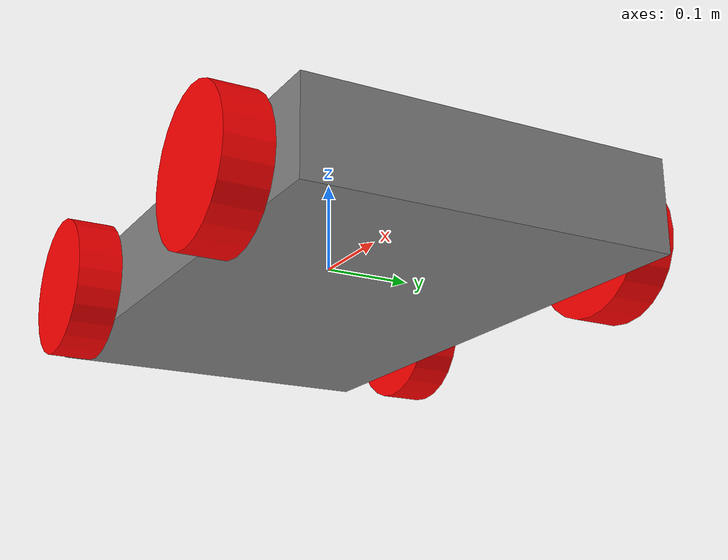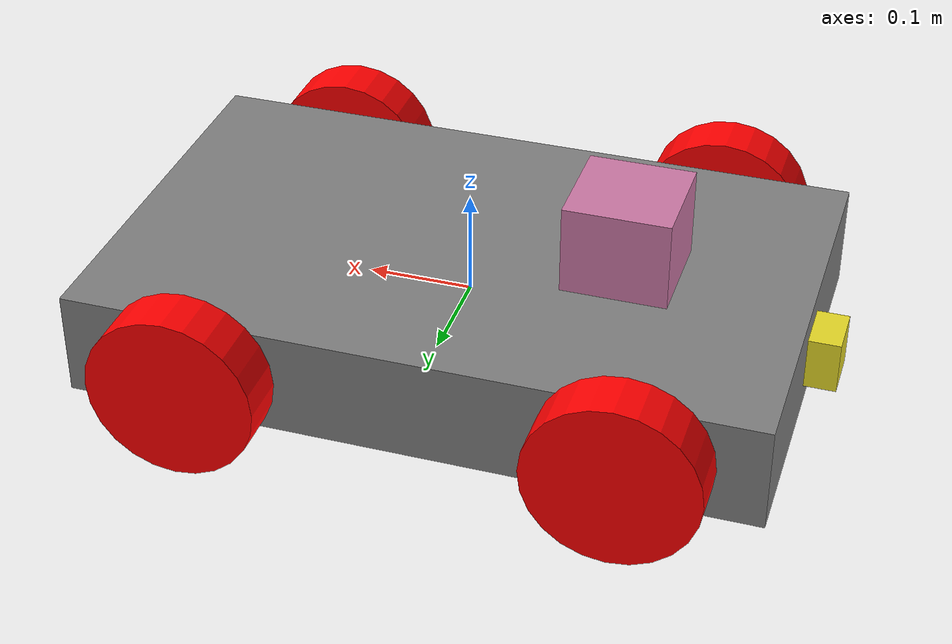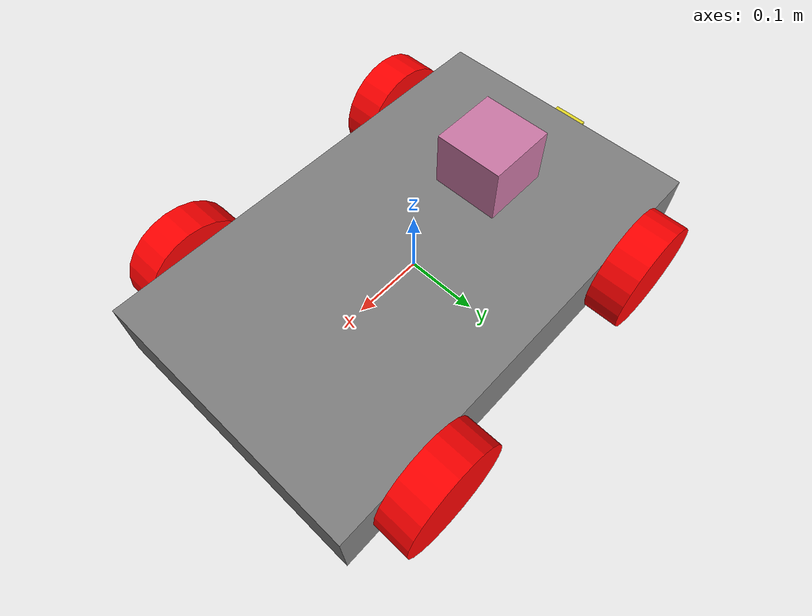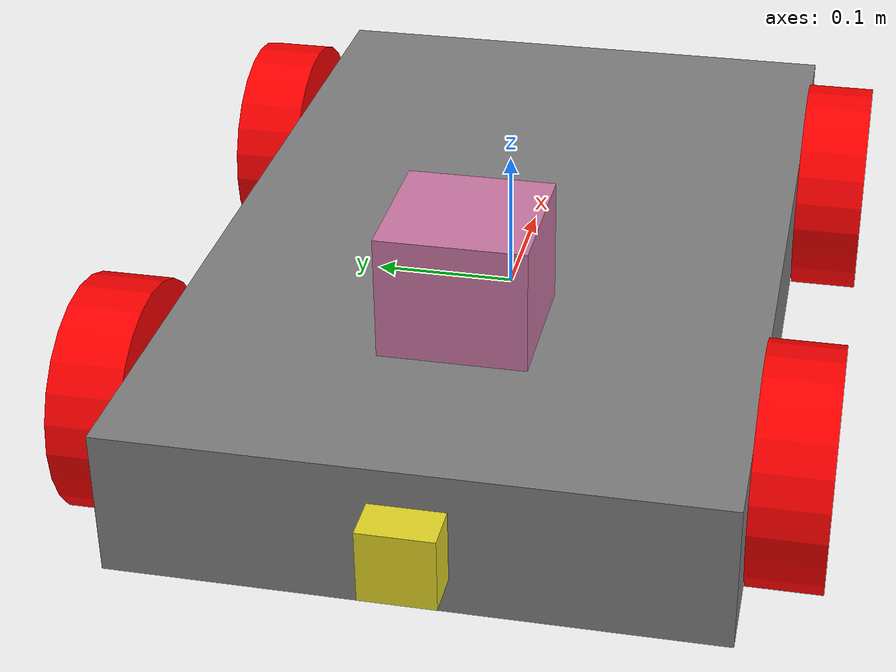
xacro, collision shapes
<?xml version="1.0" ?>

<robot xmlns:xacro="http://www.ros.org/wiki/xacro" name="my_robot">

  <xacro:include filename="$(find my_robot)/urdf/colors.xacro" />
  <xacro:include filename="$(find my_robot)/urdf/my_robot.gazebo" />

    <!-- Robot footprint link -->
  <link name="robot_footprint"/>
  <joint name="robot_footprint_joint" type="fixed">
    <origin xyz="0 0 0" rpy="0 0 0" />
    <parent link="robot_footprint" />
    <child link="base_link" />
  </joint>

    <!-- Robot base_link -->
  <link name="base_link">
    <inertial>
      <origin xyz="0.0 0.0 0.0" rpy="0 0 0"/>
      <mass value="15.0"/>
      <inertia ixx="0.1" ixy="0.0" ixz="0.0" iyy="0.1" iyz="0.0" izz="0.1"/>
    </inertial>
    <visual name="base_link">
      <origin xyz="0.0 0.0 0.0" rpy="0.0 0.0 0.0"/>
      <geometry>
        <box size="0.65 0.4 0.1"/>
      </geometry>
      <material name="gray">
        <color rgba="0.5 0.5 0.5 1.0"/>
      </material>
    </visual>
    <collision>
      <origin xyz="0.0 0.0 0.0" rpy="0.0 0.0 0.0"/>
      <geometry>
        <box size="0.65 0.4 0.1"/>
      </geometry>
    </collision>
   </link>

    <!-- xacro setup -->
  <xacro:macro name="wheel" params="name x y z r p n">

      <link name="${name}">
          <inertial>
              <origin xyz="0.0 0.0 0.0" rpy="0.0 0.0 0.0"/>
              <mass value="10.0"/>
              <inertia ixx="0.1" ixy="0.0" ixz="0.0" iyy="0.1" iyz="0.0" izz="0.1"/>
          </inertial>
          <visual name="${name}">
              <origin xyz="0.0 0.0 0.0" rpy="0.0 0.0 0.0"/>
              <geometry>
                  <cylinder radius="0.08" length="0.05"/>
              </geometry>
              <material name="red">
              </material>
          </visual>
          <collision>
              <origin xyz="0.0 0.0 0.0" rpy="0.0 0.0 0.0"/>
              <geometry>
                  <cylinder radius="0.08" length="0.05"/>
              </geometry>
          </collision>
      </link>

      <joint name="Joint_${name}" type="continuous">
          <origin xyz="${x} ${y} ${z}" rpy="${r} ${p} ${n}"/>
          <parent link="base_link"/>
          <child link="${name}"/>
          <axis xyz="0.0 0.0 1.0"/>
      </joint>
  </xacro:macro>

    <!--wheel with xacro-->
  <xacro:wheel name="Right_Wheel_Back" x="0.2" y="0.225" z="0.0" r="1.5708" p="0.0" n="0.0"/>
  <xacro:wheel name="Left_Wheel_Front" x="-0.2" y="-0.225" z="0.0" r="1.5708" p="0.0" n="0.0"/>
  <xacro:wheel name="Right_Wheel_Front" x="-0.2" y="0.225" z="0.0" r="1.5708" p="0.0" n="0.0"/>
  <xacro:wheel name="Left_Wheel_Back" x="0.2" y="-0.225" z="0.0" r="1.5708" p="0.0" n="0.0"/>

    <!-- Hokuyo_lidar -->
  <link name="hokuyo">
      <inertial>
          <origin xyz="0.0 0.0 0.0" rpy="0.0 0.0 0.0"/>
          <mass value="0.25"/>
          <inertia ixx="1e-6" ixy="0.0" ixz="0.0" iyy="1e-6" iyz="0.0" izz="1e-6"/>
      </inertial>
      <visual name="hokuyo">
          <origin xyz="0.0 0.0 -0.015" rpy="0.0 0.0 0.0"/>
          <geometry>
              <mesh filename="package://my_robot/meshes/hokuyo.dae"/>
          </geometry>
          <material name="realsense_material">
            <texture filename="package://my_robot/materials/textures/realsense_diffuse.png"/>
          </material>
      </visual>
      <collision>
          <origin xyz="0.0 0.0 -0.015" rpy="0.0 0.0 0.0"/>
          <geometry>
              <box size="0.1 0.1 0.1"/>
          </geometry>
      </collision>
  </link>

  <joint name="hokuyo_joint" type="fixed">
    <origin xyz="-0.15 0.0 0.1" rpy="0.0 0.0 3.14"/>
    <parent link="base_link"/>
    <child link="hokuyo"/>
    <axis xyz="0.0 1.0 0.0"/>
  </joint>

    <!-- camera -->
  <link name="camera_link">
      <inertial>
          <origin xyz="0.0 0.0 0.0" rpy="0.0 0.0 0.0"/>
          <mass value="0.35"/>
          <inertia ixx="1e-6" ixy="0.0" ixz="0.0" iyy="1e-6" iyz="0.0" izz="1e-6"/>
      </inertial>
      <visual name="camera">
          <origin xyz="0.0 0.0 0.0" rpy="0.0 0.0 0.0"/>
          <geometry>
              <mesh filename="package://my_robot/meshes/realsense.dae"/>
          </geometry>
      </visual>
      <collision>
          <origin xyz="0.0 0.0 0.0" rpy="0.0 0.0 0.0"/>
          <geometry>
              <box size="0.05 0.05 0.05"/>
          </geometry>
      </collision>

  </link>

  <joint name="camera_joint" type="fixed">
      <origin xyz="-0.33 0.0 0.0" rpy="0.0 0.0 3.14"/>
      <parent link="base_link"/>
      <child link="camera_link"/>
      <axis xyz="0.0 1.0 0.0"/>
  </joint>
</robot>

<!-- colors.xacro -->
<robot name="myrobot" xmlns:xacro="http://ros.org/wiki/xacro">

    <material name="black">
        <color rgba="0.0 0.0 0.0 1.0"/>
    </material>
    <material name="gray">
        <color rgba="0.203125 0.23828125 0.28515625 1.0"/>
    </material>
    <material name="white">
        <color rgba="1.0 1.0 1.0 1.0"/>
    </material>
    <material name="blue">
        <color rgba="0 0 0.8 1"/>
    </material>
    <material name="red">
        <color rgba="1.0 0.0 0.0 1.0"/>
    </material>
    <material name="green">
        <color rgba="0.0 0.8 0.0 1.0"/>
    </material>

    <gazebo reference="base_link">
        <material>Gazebo/Gray</material>
    </gazebo>

    <gazebo reference="Right_Wheel_Back">
        <material>Gazebo/Red</material>
    </gazebo>

    <gazebo reference="Left_Wheel_Front">
        <material>Gazebo/Red</material>
    </gazebo>

    <gazebo reference="Right_Wheel_Front">
        <material>Gazebo/Red</material>
    </gazebo>

    <gazebo reference="Left_Wheel_Back">
        <material>Gazebo/Red</material>
    </gazebo>

    <gazebo reference="camera_link">
        <material>Gazebo/Yellow</material>
    </gazebo>

    <material name="realsense_material">
       <texture filename="package://my_robot/materials/textures/realsense_diffuse.png"/>
    </material>

</robot>
